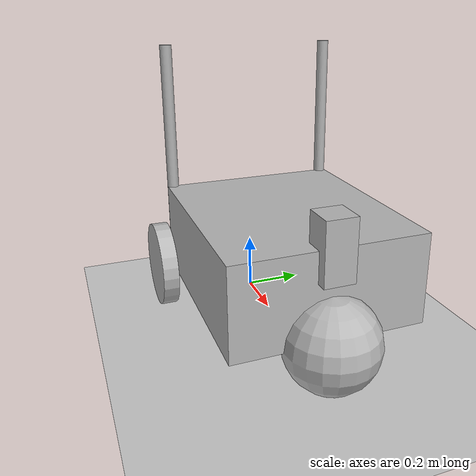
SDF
<?xml version="1.0"?>
<sdf version="1.6">
  <world name="default">

    <include>
      <uri>model://ground_plane</uri>
    </include>

    <include>
      <uri>model://sun</uri>
    </include>

    <model name='vehicle'>
      <pose>0 0 0.1524 0 0 0</pose>

      <link name='chassis'>
        <pose>0.3576 0 0.15 0 0 0</pose>
        <inertial>
          <mass>8</mass>
          <inertia>
            <ixx>0.126164</ixx>
            <ixy>0</ixy>
            <ixz>0</ixz>
            <iyy>0.416519</iyy>
            <iyz>0</iyz>
            <izz>0.481014</izz>
          </inertia>
        </inertial>
        <visual name='visual'>
          <geometry>
            <box>
              <size>0.7152 0.628 0.30</size>
            </box>
          </geometry>
        </visual>
        <collision name='collision'>
          <geometry>
            <box>
              <size>0.7152 0.628 0.30</size>
            </box>
          </geometry>
        </collision>
      </link>

      <link name='left_grip'>
        <pose>0 0.294 0.3988 0 0 0</pose>
        <inertial>
          <mass>0.2</mass>
          <inertia>
            <ixx>0.145833</ixx>
            <ixy>0</ixy>
            <ixz>0</ixz>
            <iyy>0.145833</iyy>
            <iyz>0</iyz>
            <izz>0.125</izz>
          </inertia>
        </inertial>
        <visual name='visual'>
          <geometry>
            <cylinder>
              <radius>0.02</radius>
              <length>0.7976</length>
            </cylinder>
          </geometry>
        </visual>
        <collision name='collision'>
          <geometry>
            <cylinder>
              <radius>0.02</radius>
              <length>0.7976</length>
            </cylinder>
          </geometry>
        </collision>
      </link>

      <link name='right_grip'>
        <pose>0 -0.294 0.3988 0 0 0</pose>
        <inertial>
          <mass>0.2</mass>
          <inertia>
            <ixx>0.145833</ixx>
            <ixy>0</ixy>
            <ixz>0</ixz>
            <iyy>0.145833</iyy>
            <iyz>0</iyz>
            <izz>0.125</izz>
          </inertia>
        </inertial>
        <visual name='visual'>
          <geometry>
            <cylinder>
              <radius>0.02</radius>
              <length>0.7976</length>
            </cylinder>
          </geometry>
        </visual>
        <collision name='collision'>
          <geometry>
            <cylinder>
              <radius>0.02</radius>
              <length>0.7976</length>
            </cylinder>
          </geometry>
        </collision>
      </link>

      <link name='left_wheel'>
        <pose>0 0.3493 0 -1.5707 0 0</pose>
        <inertial>
          <mass>0.5</mass>
          <inertia>
            <ixx>0.145833</ixx>
            <ixy>0</ixy>
            <ixz>0</ixz>
            <iyy>0.145833</iyy>
            <iyz>0</iyz>
            <izz>0.125</izz>
          </inertia>
        </inertial>
        <visual name='visual'>
          <geometry>
            <cylinder>
              <radius>0.1524</radius>
              <length>0.056</length>
            </cylinder>
          </geometry>
        </visual>
        <collision name='collision'>
          <geometry>
            <cylinder>
              <radius>0.1524</radius>
              <length>0.056</length>
            </cylinder>
          </geometry>
          <surface>
            <friction>
              <ode>
                <mu>1</mu>
                <mu2>1</mu2>
                <slip1>0</slip1>
                <slip2>0</slip2>
              </ode>
            </friction>
            <contact>
              <ode>
                <soft_cfm>0</soft_cfm>
                <soft_erp>0.2</soft_erp>
                <kp>1e+13</kp>
                <kd>1</kd>
                <max_vel>0.01</max_vel>
                <min_depth>0.01</min_depth>
              </ode>
            </contact>
          </surface>
        </collision>
      </link>

      <link name='right_wheel'>
        <pose>0 -0.3493 0 -1.5707 0 0</pose>
        <inertial>
          <mass>0.5</mass>
          <inertia>
            <ixx>0.145833</ixx>
            <ixy>0</ixy>
            <ixz>0</ixz>
            <iyy>0.145833</iyy>
            <iyz>0</iyz>
            <izz>0.125</izz>
          </inertia>
        </inertial>
        <visual name='visual'>
          <geometry>
            <cylinder>
              <radius>0.1524</radius>
              <length>0.056</length>
            </cylinder>
          </geometry>
        </visual>
        <collision name='collision'>
          <geometry>
            <cylinder>
              <radius>0.1524</radius>
              <length>0.056</length>
            </cylinder>
          </geometry>
          <surface>
            <friction>
              <ode>
                <mu>1</mu>
                <mu2>1</mu2>
                <slip1>0</slip1>
                <slip2>0</slip2>
              </ode>
            </friction>
            <contact>
              <ode>
                <soft_cfm>0</soft_cfm>
                <soft_erp>0.2</soft_erp>
                <kp>1e+13</kp>
                <kd>1</kd>
                <max_vel>0.01</max_vel>
                <min_depth>0.01</min_depth>
              </ode>
            </contact>
          </surface>
        </collision>
      </link>

      <link name='caster'>
        <pose>0.7152 0 0 0 0 0</pose>
        <inertial>
          <mass>2</mass>
          <inertia>
            <ixx>0.1</ixx>
            <ixy>0</ixy>
            <ixz>0</ixz>
            <iyy>0.1</iyy>
            <iyz>0</iyz>
            <izz>0.1</izz>
          </inertia>
        </inertial>
        <visual name='visual'>
          <geometry>
            <sphere>
              <radius>0.1524</radius>
            </sphere>
          </geometry>
        </visual>
        <collision name='collision'>
          <geometry>
            <sphere>
              <radius>0.1524</radius>
            </sphere>
          </geometry>
        </collision>
      </link>

      <joint name='left_grip_joint' type='fixed'>
        <parent>chassis</parent>
        <child>left_grip</child>
      </joint>

      <joint name='right_grip_joint' type='fixed'>
        <parent>chassis</parent>
        <child>right_grip</child>
      </joint>

      <joint name='left_wheel_joint' type='revolute'>
        <parent>chassis</parent>
        <child>left_wheel</child>
        <axis>
          <xyz>0 0 1</xyz>
          <limit>
            <lower>-1.79769e+308</lower>
            <upper>1.79769e+308</upper>
          </limit>
        </axis>
      </joint>

      <joint name='right_wheel_joint' type='revolute'>
        <parent>chassis</parent>
        <child>right_wheel</child>
        <axis>
          <xyz>0 0 1</xyz>
          <limit>
            <lower>-1.79769e+308</lower>
            <upper>1.79769e+308</upper>
          </limit>
        </axis>
      </joint>

      <joint name='caster_wheel' type='ball'>
        <parent>chassis</parent>
        <child>caster</child>
      </joint>

      <link name='sensor_box'>
        <pose>0.7 0 0.3 0 0 0</pose>
        <inertial>
          <mass>0.2</mass>
          <inertia>
            <ixx>0.145833</ixx>
            <ixy>0</ixy>
            <ixz>0</ixz>
            <iyy>0.145833</iyy>
            <iyz>0</iyz>
            <izz>0.125</izz>
          </inertia>
        </inertial>
        <visual name='visual'>
          <geometry>
            <box>
              <size>0.1 0.1 0.2</size>
            </box>
          </geometry>
        </visual>
        <collision name='collision'>
          <geometry>
            <box>
              <size>0.1 0.1 0.2</size>
            </box>
          </geometry>
        </collision>

        <!-- ray sensor -->
        <sensor name='sick_tim5xx' type='ray'>
          <always_on>true</always_on>
          <update_rate>1.0</update_rate>
          <ray>
            <scan>
              <horizontal>
                <samples>270</samples>
                <resolution>1</resolution>
                <min_angle>-2.3562</min_angle>
                <max_angle>2.3562</max_angle>
              </horizontal>
            </scan>
            <range>
              <min>0.1</min>
              <max>25</max>
            </range>
          </ray>
          <plugin name="pc2" filename="libgazebo_ros_laser.so">
            <topicName>/demo/laser/scan</topicName>
            <frameName>hokuyo</frameName>
          </plugin>
        </sensor>
      </link>

      <joint name='sensor_joint' type='fixed'>
        <parent>chassis</parent>
        <child>sensor_box</child>
      </joint>

      <plugin name='diff_drive' filename='libgazebo_ros_diff_drive.so'>

        <ros>
          <namespace>/demo</namespace>
          <remapping>cmd_vel:=cmd_demo</remapping>
          <remapping>odom:=odom_demo</remapping>
        </ros>

        <!-- wheels -->
        <left_joint>left_wheel_joint</left_joint>
        <right_joint>right_wheel_joint</right_joint>

        <!-- kinematics -->
        <wheel_separation>0.648</wheel_separation>
        <wheel_diameter>0.3048</wheel_diameter>

        <!-- limits -->
        <max_wheel_torque>20</max_wheel_torque>
        <max_wheel_acceleration>1.0</max_wheel_acceleration>

        <!-- output -->
        <publish_odom>true</publish_odom>
        <publish_odom_tf>true</publish_odom_tf>
        <publish_wheel_tf>true</publish_wheel_tf>

        <odometry_frame>odom_demo</odometry_frame>
        <robot_base_frame>chassis</robot_base_frame>

      </plugin>

    </model>

  </world>
</sdf>
